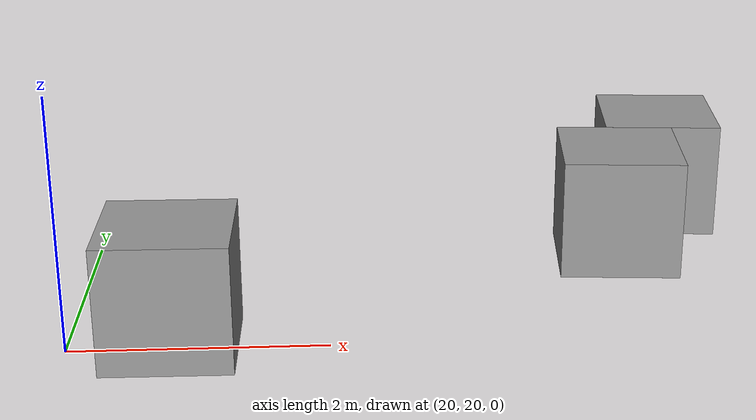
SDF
<sdf version="1.7">
 <world name="default">
  <model name="unit_box_7">
   <pose>20.8008 20.0517 0.499995 0 1e-05 -0.006917</pose>
   <link name="link">
    <inertial>
     <mass>1</mass>
     <inertia>
      <ixx>0.166667</ixx>
      <ixy>0</ixy>
      <ixz>0</ixz>
      <iyy>0.166667</iyy>
      <iyz>0</iyz>
      <izz>0.166667</izz>
     </inertia>
    </inertial>
    <collision name="collision"><geometry><box><size>1 1 1</size></box></geometry></collision>
    <visual name="visual">
     <geometry><box><size>1 1 1</size></box></geometry>
     <material>
      <script><name>Gazebo/Grey</name><uri>file://media/materials/scripts/gazebo.material</uri></script>
     </material>
    </visual>
   </link>
  </model>
  <model name="unit_box_8">
   <pose>24.9688 22.6343 0.499995 -1e-05 -0 -0.073436</pose>
   <link name="link">
    <inertial>
     <mass>1</mass>
     <inertia>
      <ixx>0.166667</ixx>
      <ixy>0</ixy>
      <ixz>0</ixz>
      <iyy>0.166667</iyy>
      <iyz>0</iyz>
      <izz>0.166667</izz>
     </inertia>
    </inertial>
    <collision name="collision"><geometry><box><size>1 1 1</size></box></geometry></collision>
    <visual name="visual">
     <geometry><box><size>1 1 1</size></box></geometry>
     <material>
      <script><name>Gazebo/Grey</name><uri>file://media/materials/scripts/gazebo.material</uri></script>
     </material>
    </visual>
   </link>
  </model>
  <model name="unit_box_9">
   <pose>24.4644 21.6687 0.5 0 -0 -0.073435</pose>
   <link name="link">
    <inertial>
     <mass>1</mass>
     <inertia>
      <ixx>0.166667</ixx>
      <ixy>0</ixy>
      <ixz>0</ixz>
      <iyy>0.166667</iyy>
      <iyz>0</iyz>
      <izz>0.166667</izz>
     </inertia>
    </inertial>
    <collision name="collision"><geometry><box><size>1 1 1</size></box></geometry></collision>
    <visual name="visual">
     <geometry><box><size>1 1 1</size></box></geometry>
     <material>
      <script><name>Gazebo/Grey</name><uri>file://media/materials/scripts/gazebo.material</uri></script>
     </material>
    </visual>
   </link>
  </model>
 </world>
</sdf>
